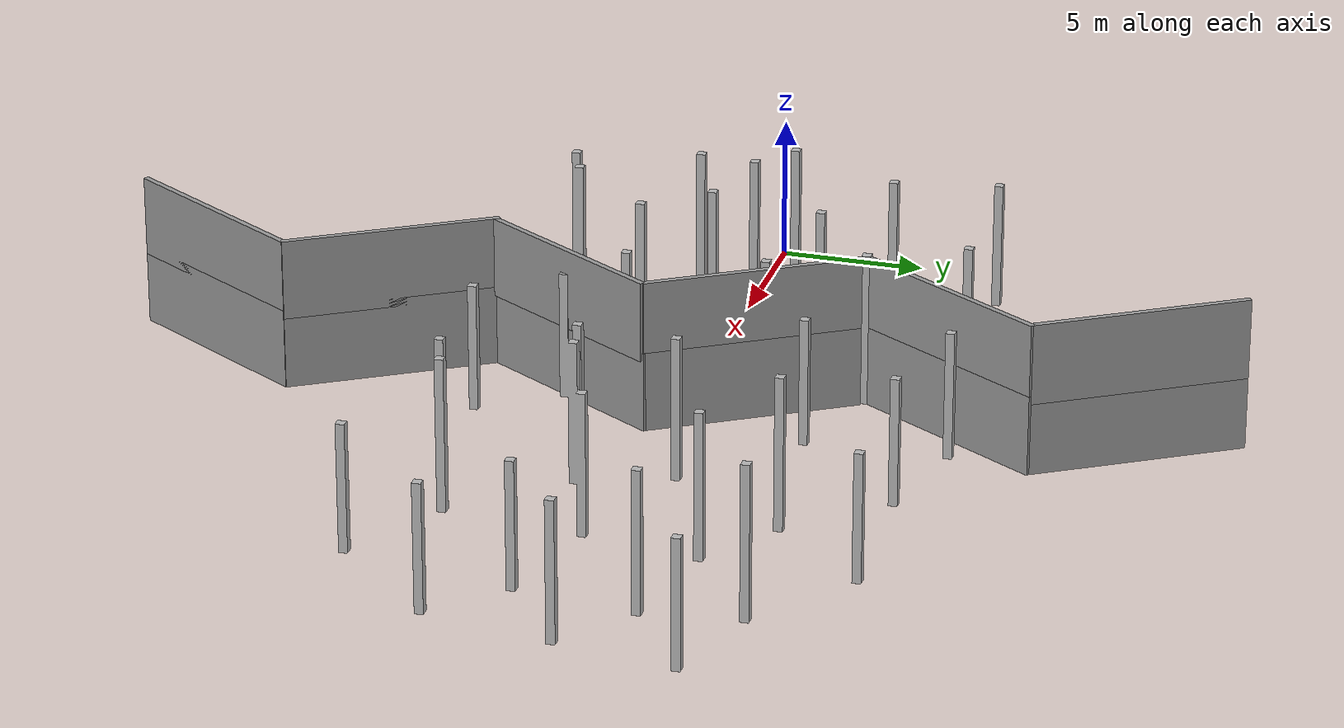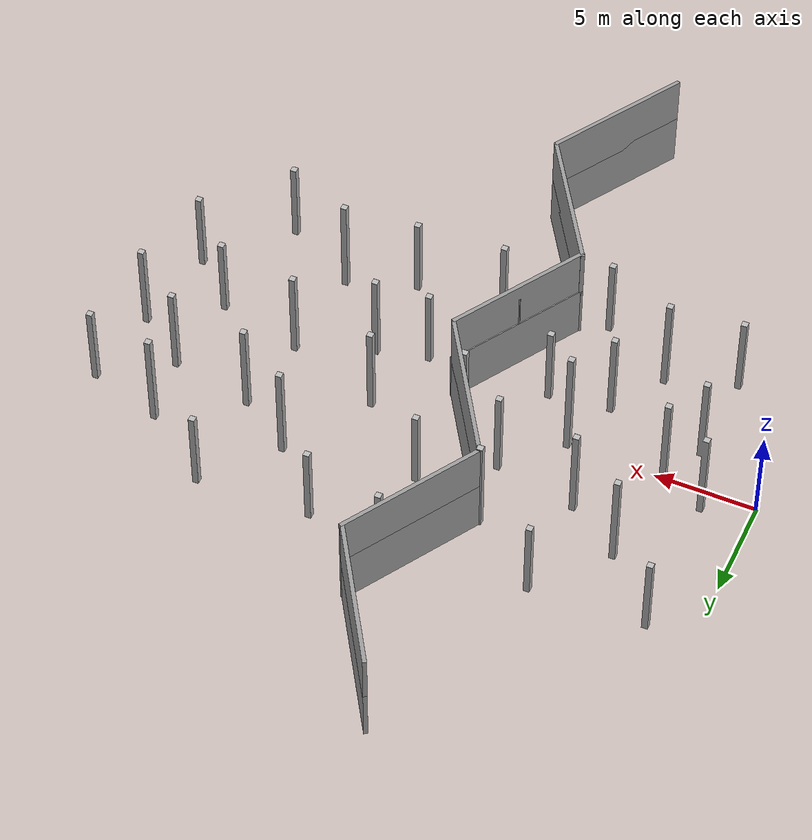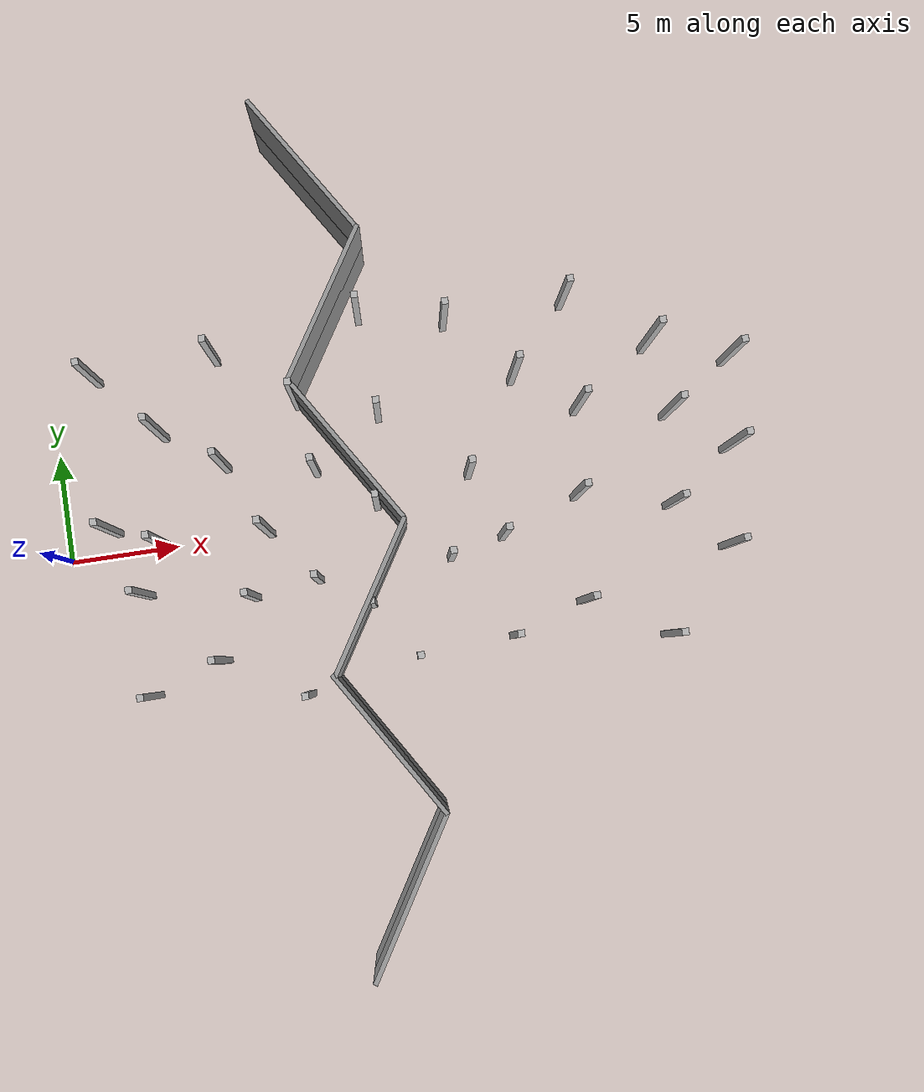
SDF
<sdf version="1.6">
 <world name="world">
  <model name="ground_plane">
   <static>1</static>
   <link name="link">
    <collision name="collision">
     <geometry><plane><normal>0 0 1</normal><size>100 100</size></plane></geometry>
     <surface><friction><ode><mu>100</mu><mu2>50</mu2></ode></friction></surface>
    </collision>
    <velocity_decay><linear>0</linear><angular>0</angular></velocity_decay>
   </link>
  </model>
  <model name="pillars">
   <static>1</static>
   <link name="body">
    <visual name="visual">
     <pose>0 0 -0.001 0 -0 0</pose>
     <geometry><mesh><uri>model://pillars/pillars4.dae</uri><scale>1 1 1</scale></mesh></geometry>
    </visual>
    <collision name="pillars">
     <pose>0 0 -0.001 0 -0 0</pose>
     <geometry><mesh><uri>model://pillars/pillars4.dae</uri><scale>1 1 1</scale></mesh></geometry>
    </collision>
    <velocity_decay><linear>0</linear><angular>0</angular></velocity_decay>
   </link>
  </model>
  <physics name="default_physics" default="0" type="ode">
   <max_step_size>0.001</max_step_size>
   <real_time_factor>1</real_time_factor>
   <real_time_update_rate>1000</real_time_update_rate>
  </physics>
  <scene><ambient>0.4 0.4 0.4 1</ambient><background>0.7 0.7 0.7 1</background><shadows>1</shadows></scene>
  <spherical_coordinates>
   <surface_model>EARTH_WGS84</surface_model>
   <latitude_deg>0</latitude_deg>
   <longitude_deg>0</longitude_deg>
   <elevation>0</elevation>
   <heading_deg>0</heading_deg>
  </spherical_coordinates>
  <gravity>0 0 -9.8</gravity>
  <magnetic_field>6e-06 2.3e-05 -4.2e-05</magnetic_field>
  <atmosphere type="adiabatic"/>
  <model name="grey_wall">
   <static>1</static>
   <link name="link">
    <pose>0 0 1.4 0 -0 0</pose>
    <collision name="collision"><geometry><box><size>7.5 0.2 2.8</size></box></geometry></collision>
    <visual name="visual">
     <cast_shadows>0</cast_shadows>
     <geometry><box><size>7.5 0.2 2.8</size></box></geometry>
     <material>
      <script>
       <uri>model://grey_wall/materials/scripts</uri>
       <uri>model://grey_wall/materials/textures</uri>
       <name>vrc/grey_wall</name>
      </script>
     </material>
    </visual>
   </link>
   <pose>13.5722 -3.83891 0 0 -0 1.0177</pose>
  </model>
  <model name="grey_wall_clone">
   <static>1</static>
   <link name="link">
    <pose>0 0 1.4 0 -0 0</pose>
    <collision name="collision"><geometry><box><size>7.5 0.2 2.8</size></box></geometry></collision>
    <visual name="visual">
     <cast_shadows>0</cast_shadows>
     <geometry><box><size>7.5 0.2 2.8</size></box></geometry>
     <material>
      <script>
       <uri>model://grey_wall/materials/scripts</uri>
       <uri>model://grey_wall/materials/textures</uri>
       <name>vrc/grey_wall</name>
      </script>
     </material>
    </visual>
   </link>
   <pose>13.5347 2.42752 0 0 0 -1.0177</pose>
  </model>
  <model name="grey_wall_clone_0">
   <static>1</static>
   <link name="link">
    <pose>0 0 1.4 0 -0 0</pose>
    <collision name="collision"><geometry><box><size>7.5 0.2 2.8</size></box></geometry></collision>
    <visual name="visual">
     <cast_shadows>0</cast_shadows>
     <geometry><box><size>7.5 0.2 2.8</size></box></geometry>
     <material>
      <script>
       <uri>model://grey_wall/materials/scripts</uri>
       <uri>model://grey_wall/materials/textures</uri>
       <name>vrc/grey_wall</name>
      </script>
     </material>
    </visual>
   </link>
   <pose>13.3929 9.04645 0 0 -0 1.0177</pose>
  </model>
  <model name="grey_wall_clone_clone">
   <static>1</static>
   <link name="link">
    <pose>0 0 1.4 0 -0 0</pose>
    <collision name="collision"><geometry><box><size>7.5 0.2 2.8</size></box></geometry></collision>
    <visual name="visual">
     <cast_shadows>0</cast_shadows>
     <geometry><box><size>7.5 0.2 2.8</size></box></geometry>
     <material>
      <script>
       <uri>model://grey_wall/materials/scripts</uri>
       <uri>model://grey_wall/materials/textures</uri>
       <name>vrc/grey_wall</name>
      </script>
     </material>
    </visual>
   </link>
   <pose>13.5276 -10.0893 0 0 0 -1.0177</pose>
  </model>
  <model name="grey_wall_clone_clone_0">
   <static>1</static>
   <link name="link">
    <pose>0 0 1.4 0 -0 0</pose>
    <collision name="collision"><geometry><box><size>7.5 0.2 2.8</size></box></geometry></collision>
    <visual name="visual">
     <cast_shadows>0</cast_shadows>
     <geometry><box><size>7.5 0.2 2.8</size></box></geometry>
     <material>
      <script>
       <uri>model://grey_wall/materials/scripts</uri>
       <uri>model://grey_wall/materials/textures</uri>
       <name>vrc/grey_wall</name>
      </script>
     </material>
    </visual>
   </link>
   <pose>13.3128 15.37 0 0 0 -1.0177</pose>
  </model>
  <model name="grey_wall_clone_1">
   <static>1</static>
   <link name="link">
    <pose>0 0 1.4 0 -0 0</pose>
    <collision name="collision"><geometry><box><size>7.5 0.2 2.8</size></box></geometry></collision>
    <visual name="visual">
     <cast_shadows>0</cast_shadows>
     <geometry><box><size>7.5 0.2 2.8</size></box></geometry>
     <material>
      <script>
       <uri>model://grey_wall/materials/scripts</uri>
       <uri>model://grey_wall/materials/textures</uri>
       <name>vrc/grey_wall</name>
      </script>
     </material>
    </visual>
   </link>
   <pose>13.5306 -16.383 0 0 -0 1.0177</pose>
  </model>
  <model name="grey_wall_clone_clone_1">
   <static>1</static>
   <link name="link">
    <pose>0 0 1.4 0 -0 0</pose>
    <collision name="collision"><geometry><box><size>7.5 0.2 2.8</size></box></geometry></collision>
    <visual name="visual">
     <cast_shadows>0</cast_shadows>
     <geometry><box><size>7.5 0.2 2.8</size></box></geometry>
     <material>
      <script>
       <uri>model://grey_wall/materials/scripts</uri>
       <uri>model://grey_wall/materials/textures</uri>
       <name>vrc/grey_wall</name>
      </script>
     </material>
    </visual>
   </link>
   <pose>13.5347 2.42752 2.5 0 0 -1.0177</pose>
  </model>
  <model name="grey_wall_clone_0_clone">
   <static>1</static>
   <link name="link">
    <pose>0 0 1.4 0 -0 0</pose>
    <collision name="collision"><geometry><box><size>7.5 0.2 2.8</size></box></geometry></collision>
    <visual name="visual">
     <cast_shadows>0</cast_shadows>
     <geometry><box><size>7.5 0.2 2.8</size></box></geometry>
     <material>
      <script>
       <uri>model://grey_wall/materials/scripts</uri>
       <uri>model://grey_wall/materials/textures</uri>
       <name>vrc/grey_wall</name>
      </script>
     </material>
    </visual>
   </link>
   <pose>13.3929 9.04645 2.5 0 -0 1.0177</pose>
  </model>
  <model name="grey_wall_clone_2">
   <static>1</static>
   <link name="link">
    <pose>0 0 1.4 0 -0 0</pose>
    <collision name="collision"><geometry><box><size>7.5 0.2 2.8</size></box></geometry></collision>
    <visual name="visual">
     <cast_shadows>0</cast_shadows>
     <geometry><box><size>7.5 0.2 2.8</size></box></geometry>
     <material>
      <script>
       <uri>model://grey_wall/materials/scripts</uri>
       <uri>model://grey_wall/materials/textures</uri>
       <name>vrc/grey_wall</name>
      </script>
     </material>
    </visual>
   </link>
   <pose>13.5722 -3.94515 2.5 0 -0 1.0177</pose>
  </model>
  <model name="grey_wall_clone_clone_clone">
   <static>1</static>
   <link name="link">
    <pose>0 0 1.4 0 -0 0</pose>
    <collision name="collision"><geometry><box><size>7.5 0.2 2.8</size></box></geometry></collision>
    <visual name="visual">
     <cast_shadows>0</cast_shadows>
     <geometry><box><size>7.5 0.2 2.8</size></box></geometry>
     <material>
      <script>
       <uri>model://grey_wall/materials/scripts</uri>
       <uri>model://grey_wall/materials/textures</uri>
       <name>vrc/grey_wall</name>
      </script>
     </material>
    </visual>
   </link>
   <pose>13.5276 -10.0893 2.5 0 0 -1.0177</pose>
  </model>
  <model name="grey_wall_clone_1_clone">
   <static>1</static>
   <link name="link">
    <pose>0 0 1.4 0 -0 0</pose>
    <collision name="collision"><geometry><box><size>7.5 0.2 2.8</size></box></geometry></collision>
    <visual name="visual">
     <cast_shadows>0</cast_shadows>
     <geometry><box><size>7.5 0.2 2.8</size></box></geometry>
     <material>
      <script>
       <uri>model://grey_wall/materials/scripts</uri>
       <uri>model://grey_wall/materials/textures</uri>
       <name>vrc/grey_wall</name>
      </script>
     </material>
    </visual>
   </link>
   <pose>13.5306 -16.383 2.5 0 -0 1.0177</pose>
  </model>
  <model name="grey_wall_clone_clone_0_clone">
   <static>1</static>
   <link name="link">
    <pose>0 0 1.4 0 -0 0</pose>
    <collision name="collision"><geometry><box><size>7.5 0.2 2.8</size></box></geometry></collision>
    <visual name="visual">
     <cast_shadows>0</cast_shadows>
     <geometry><box><size>7.5 0.2 2.8</size></box></geometry>
     <material>
      <script>
       <uri>model://grey_wall/materials/scripts</uri>
       <uri>model://grey_wall/materials/textures</uri>
       <name>vrc/grey_wall</name>
      </script>
     </material>
    </visual>
   </link>
   <pose>13.3128 15.37 2.5 0 0 -1.0177</pose>
  </model>
 </world>
</sdf>
